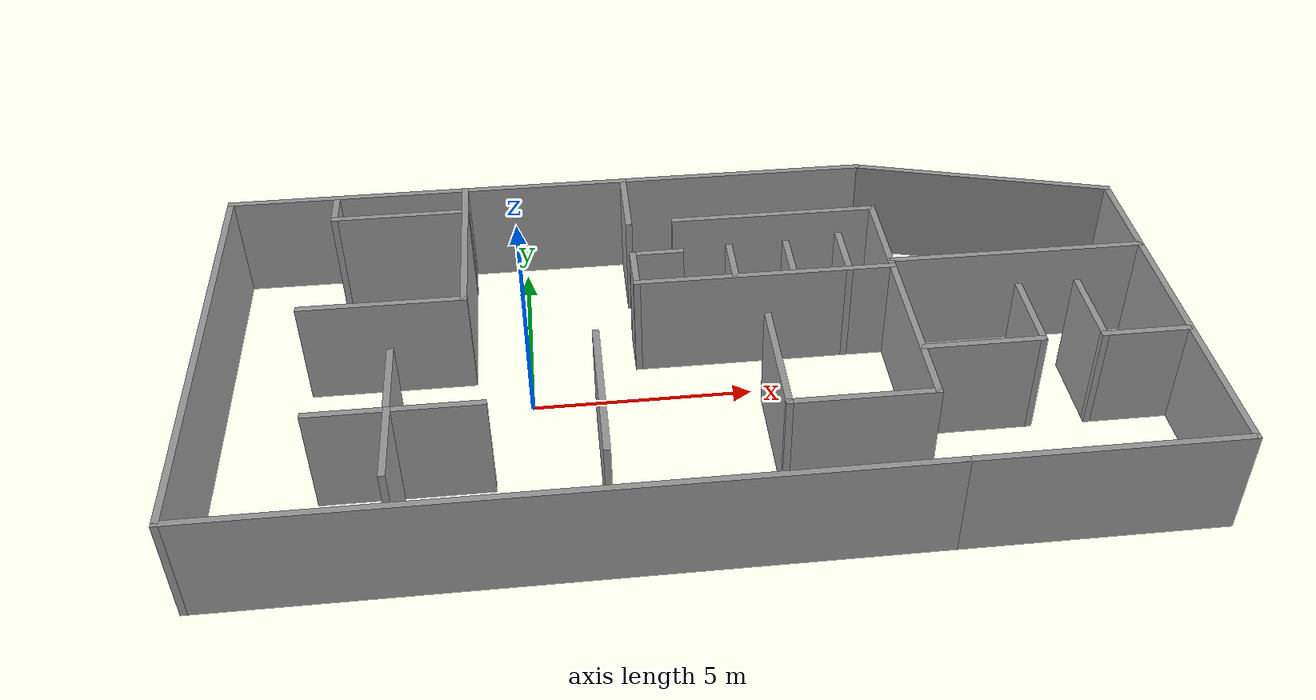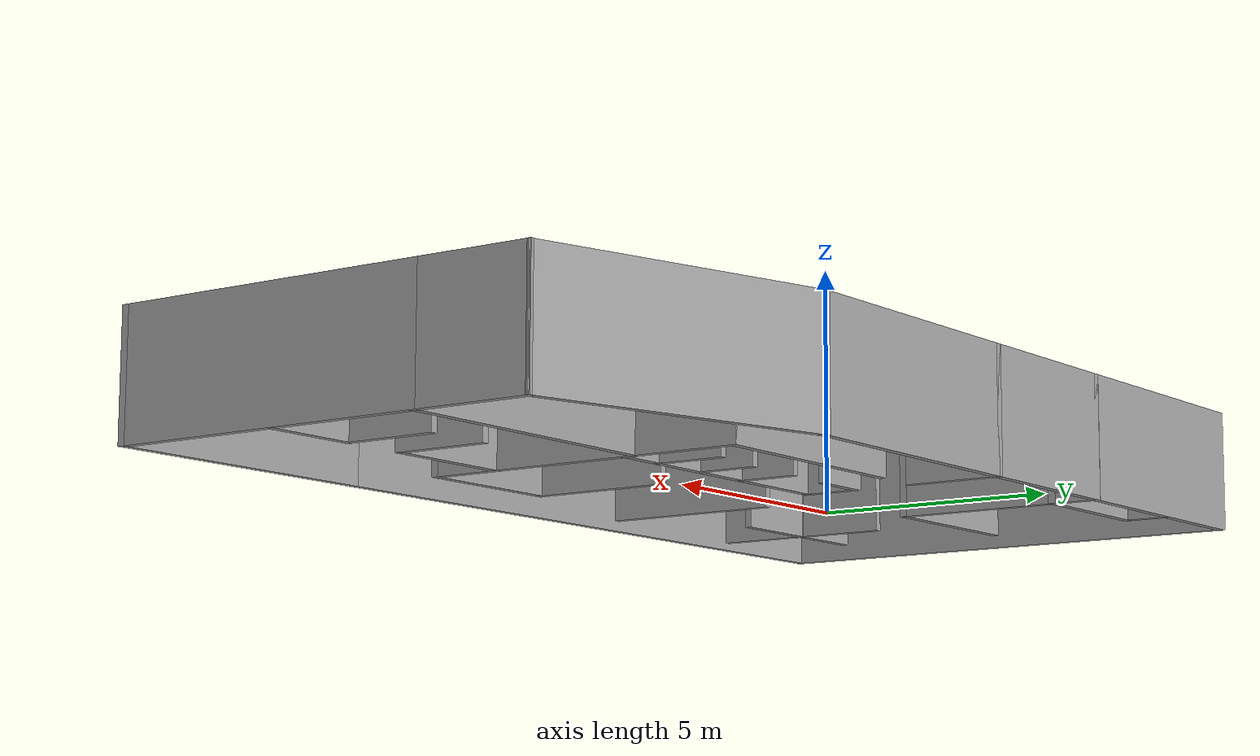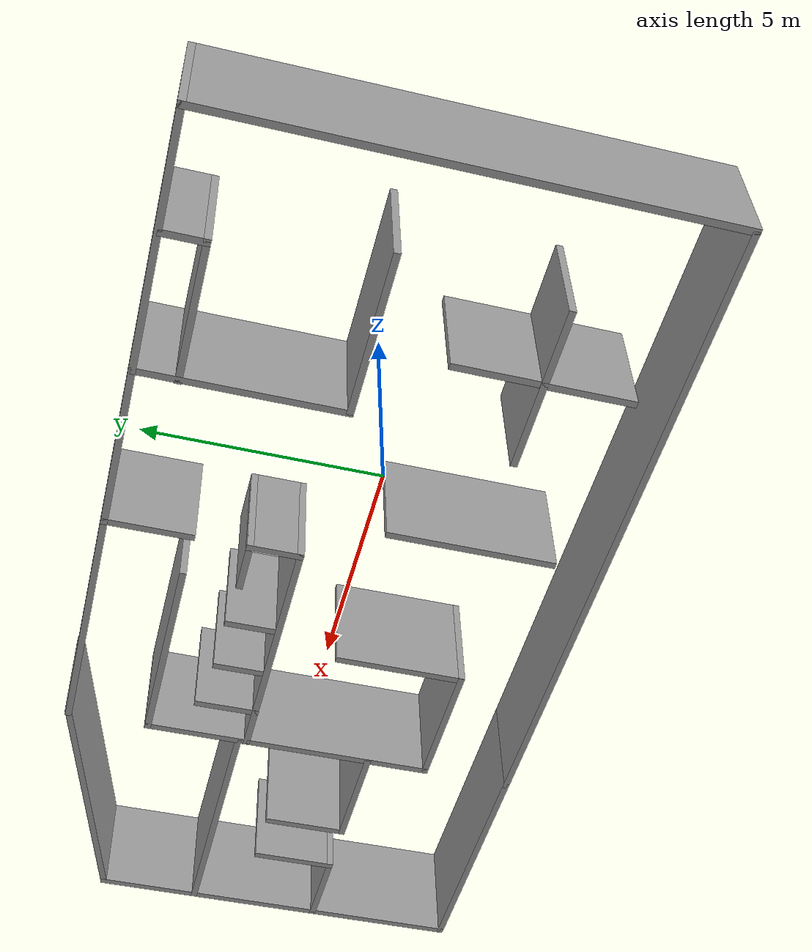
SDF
<?xml version='1.0'?>
<sdf version='1.6'>
  <model name='Building3'>
    <pose frame=''>3.66566 0.078593 0 0 -0 0</pose>
    <link name='Wall_153'>
      <collision name='Wall_153_Collision'>
        <geometry>
          <box>
            <size>4 0.15 2.5</size>
          </box>
        </geometry>
        <pose frame=''>0 0 1.25 0 -0 0</pose>
      </collision>
      <visual name='Wall_153_Visual'>
        <pose frame=''>0 0 1.25 0 -0 0</pose>
        <geometry>
          <box>
            <size>4 0.15 2.5</size>
          </box>
        </geometry>
        <material>
          <script>
            <uri>file://media/materials/scripts/gazebo.material</uri>
            <name>Gazebo/Grey</name>
          </script>
          <ambient>1 1 1 1</ambient>
        </material>
      </visual>
      <pose frame=''>-3.08371 5.29129 0 0 -0 0</pose>
    </link>
    <link name='Wall_154'>
      <collision name='Wall_154_Collision'>
        <geometry>
          <box>
            <size>2 0.15 2.5</size>
          </box>
        </geometry>
        <pose frame=''>0 0 1.25 0 -0 0</pose>
      </collision>
      <visual name='Wall_154_Visual'>
        <pose frame=''>0 0 1.25 0 -0 0</pose>
        <geometry>
          <box>
            <size>2 0.15 2.5</size>
          </box>
        </geometry>
        <material>
          <script>
            <uri>file://media/materials/scripts/gazebo.material</uri>
            <name>Gazebo/Grey</name>
          </script>
          <ambient>1 1 1 1</ambient>
        </material>
      </visual>
      <pose frame=''>-1.15871 4.36629 0 0 0 -1.5708</pose>
    </link>
    <link name='Wall_156'>
      <collision name='Wall_156_Collision'>
        <geometry>
          <box>
            <size>6 0.15 2.5</size>
          </box>
        </geometry>
        <pose frame=''>0 0 1.25 0 -0 0</pose>
      </collision>
      <visual name='Wall_156_Visual'>
        <pose frame=''>0 0 1.25 0 -0 0</pose>
        <geometry>
          <box>
            <size>6 0.15 2.5</size>
          </box>
        </geometry>
        <material>
          <script>
            <uri>file://media/materials/scripts/gazebo.material</uri>
            <name>Gazebo/Grey</name>
          </script>
          <ambient>1 1 1 1</ambient>
        </material>
      </visual>
      <pose frame=''>1.76629 5.29129 0 0 -0 0</pose>
    </link>
    <link name='Wall_161'>
      <collision name='Wall_161_Collision'>
        <geometry>
          <box>
            <size>4.9 0.15 2.5</size>
          </box>
        </geometry>
        <pose frame=''>0 0 1.25 0 -0 0</pose>
      </collision>
      <visual name='Wall_161_Visual'>
        <pose frame=''>0 0 1.25 0 -0 0</pose>
        <geometry>
          <box>
            <size>4.9 0.15 2.5</size>
          </box>
        </geometry>
        <material>
          <script>
            <uri>file://media/materials/scripts/gazebo.material</uri>
            <name>Gazebo/Grey</name>
          </script>
          <ambient>1 1 1 1</ambient>
        </material>
      </visual>
      <pose frame=''>2.31629 3.44129 0 0 -0 0</pose>
    </link>
    <link name='Wall_165'>
      <collision name='Wall_165_Collision'>
        <geometry>
          <box>
            <size>2.5 0.15 2.5</size>
          </box>
        </geometry>
        <pose frame=''>0 0 1.25 0 -0 0</pose>
      </collision>
      <visual name='Wall_165_Visual'>
        <pose frame=''>0 0 1.25 0 -0 0</pose>
        <geometry>
          <box>
            <size>2.5 0.15 2.5</size>
          </box>
        </geometry>
        <material>
          <script>
            <uri>file://media/materials/scripts/gazebo.material</uri>
            <name>Gazebo/Grey</name>
          </script>
          <ambient>1 1 1 1</ambient>
        </material>
      </visual>
      <pose frame=''>4.69129 2.26629 0 0 0 -1.5708</pose>
    </link>
    <link name='Wall_167'>
      <collision name='Wall_167_Collision'>
        <geometry>
          <box>
            <size>6 0.15 2.5</size>
          </box>
        </geometry>
        <pose frame=''>0 0 1.25 0 -0 0</pose>
      </collision>
      <visual name='Wall_167_Visual'>
        <pose frame=''>0 0 1.25 0 -0 0</pose>
        <geometry>
          <box>
            <size>6 0.15 2.5</size>
          </box>
        </geometry>
        <material>
          <script>
            <uri>file://media/materials/scripts/gazebo.material</uri>
            <name>Gazebo/Grey</name>
          </script>
          <ambient>1 1 1 1</ambient>
        </material>
      </visual>
      <pose frame=''>1.76629 1.09129 0 0 -0 3.14159</pose>
    </link>
    <link name='Wall_168'>
      <collision name='Wall_168_Collision'>
        <geometry>
          <box>
            <size>1.25 0.15 2.5</size>
          </box>
        </geometry>
        <pose frame=''>0 0 1.25 0 -0 0</pose>
      </collision>
      <visual name='Wall_168_Visual'>
        <pose frame=''>0 0 1.25 0 -0 0</pose>
        <geometry>
          <box>
            <size>1.25 0.15 2.5</size>
          </box>
        </geometry>
        <material>
          <script>
            <uri>file://media/materials/scripts/gazebo.material</uri>
            <name>Gazebo/Grey</name>
          </script>
          <ambient>1 1 1 1</ambient>
        </material>
      </visual>
      <pose frame=''>-1.15871 1.64129 0 0 -0 1.5708</pose>
    </link>
    <link name='Wall_170'>
      <collision name='Wall_170_Collision'>
        <geometry>
          <box>
            <size>1.25 0.15 2.5</size>
          </box>
        </geometry>
        <pose frame=''>0 0 1.25 0 -0 0</pose>
      </collision>
      <visual name='Wall_170_Visual'>
        <pose frame=''>0 0 1.25 0 -0 0</pose>
        <geometry>
          <box>
            <size>1.25 0.15 2.5</size>
          </box>
        </geometry>
        <material>
          <script>
            <uri>file://media/materials/scripts/gazebo.material</uri>
            <name>Gazebo/Grey</name>
          </script>
          <ambient>1 1 1 1</ambient>
        </material>
      </visual>
      <pose frame=''>-0.608713 2.19129 0 0 -0 0</pose>
    </link>
    <link name='Wall_172'>
      <collision name='Wall_172_Collision'>
        <geometry>
          <box>
            <size>1.25 0.15 2.5</size>
          </box>
        </geometry>
        <pose frame=''>0 0 1.25 0 -0 0</pose>
      </collision>
      <visual name='Wall_172_Visual'>
        <pose frame=''>0 0 1.25 0 -0 0</pose>
        <geometry>
          <box>
            <size>1.25 0.15 2.5</size>
          </box>
        </geometry>
        <material>
          <script>
            <uri>file://media/materials/scripts/gazebo.material</uri>
            <name>Gazebo/Grey</name>
          </script>
          <ambient>1 1 1 1</ambient>
        </material>
      </visual>
      <pose frame=''>1.0841 1.68212 0 0 -0 1.5708</pose>
    </link>
    <link name='Wall_174'>
      <collision name='Wall_174_Collision'>
        <geometry>
          <box>
            <size>1.25 0.15 2.5</size>
          </box>
        </geometry>
        <pose frame=''>0 0 1.25 0 -0 0</pose>
      </collision>
      <visual name='Wall_174_Visual'>
        <pose frame=''>0 0 1.25 0 -0 0</pose>
        <geometry>
          <box>
            <size>1.25 0.15 2.5</size>
          </box>
        </geometry>
        <material>
          <script>
            <uri>file://media/materials/scripts/gazebo.material</uri>
            <name>Gazebo/Grey</name>
          </script>
          <ambient>1 1 1 1</ambient>
        </material>
      </visual>
      <pose frame=''>2.41445 1.69349 0 0 -0 1.5708</pose>
    </link>
    <link name='Wall_177'>
      <collision name='Wall_177_Collision'>
        <geometry>
          <box>
            <size>1.5 0.15 2.5</size>
          </box>
        </geometry>
        <pose frame=''>0 0 1.25 0 -0 0</pose>
      </collision>
      <visual name='Wall_177_Visual'>
        <pose frame=''>0 0 1.25 0 -0 0</pose>
        <geometry>
          <box>
            <size>1.5 0.15 2.5</size>
          </box>
        </geometry>
        <material>
          <script>
            <uri>file://media/materials/scripts/gazebo.material</uri>
            <name>Gazebo/Grey</name>
          </script>
          <ambient>1 1 1 1</ambient>
        </material>
      </visual>
      <pose frame=''>3.68795 1.76164 0 0 -0 1.5708</pose>
    </link>
    <link name='Wall_179'>
      <collision name='Wall_179_Collision'>
        <geometry>
          <box>
            <size>4.5 0.15 2.5</size>
          </box>
        </geometry>
        <pose frame=''>0 0 1.25 0 -0 0</pose>
      </collision>
      <visual name='Wall_179_Visual'>
        <pose frame=''>0 0 1.25 0 -0 0</pose>
        <geometry>
          <box>
            <size>4.5 0.15 2.5</size>
          </box>
        </geometry>
        <material>
          <script>
            <uri>file://media/materials/scripts/gazebo.material</uri>
            <name>Gazebo/Grey</name>
          </script>
          <ambient>1 1 1 1</ambient>
        </material>
      </visual>
      <pose frame=''>-5.00871 3.11629 0 0 0 -1.5708</pose>
    </link>
    <link name='Wall_181'>
      <collision name='Wall_181_Collision'>
        <geometry>
          <box>
            <size>4.5 0.15 2.5</size>
          </box>
        </geometry>
        <pose frame=''>0 0 1.25 0 -0 0</pose>
      </collision>
      <visual name='Wall_181_Visual'>
        <pose frame=''>0 0 1.25 0 -0 0</pose>
        <geometry>
          <box>
            <size>4.5 0.15 2.5</size>
          </box>
        </geometry>
        <material>
          <script>
            <uri>file://media/materials/scripts/gazebo.material</uri>
            <name>Gazebo/Grey</name>
          </script>
          <ambient>1 1 1 1</ambient>
        </material>
      </visual>
      <pose frame=''>4.69129 -1.08371 0 0 0 -1.5708</pose>
    </link>
    <link name='Wall_187'>
      <collision name='Wall_187_Collision'>
        <geometry>
          <box>
            <size>3 0.15 2.5</size>
          </box>
        </geometry>
        <pose frame=''>0 0 1.25 0 -0 0</pose>
      </collision>
      <visual name='Wall_187_Visual'>
        <pose frame=''>0 0 1.25 0 -0 0</pose>
        <geometry>
          <box>
            <size>3 0.15 2.5</size>
          </box>
        </geometry>
        <material>
          <script>
            <uri>file://media/materials/scripts/gazebo.material</uri>
            <name>Gazebo/Grey</name>
          </script>
          <ambient>1 1 1 1</ambient>
        </material>
      </visual>
      <pose frame=''>1.59129 -1.83371 0 0 -0 1.5708</pose>
    </link>
    <link name='Wall_190'>
      <collision name='Wall_190_Collision'>
        <geometry>
          <box>
            <size>5.75 0.15 2.5</size>
          </box>
        </geometry>
        <pose frame=''>0 0 1.25 0 -0 0</pose>
      </collision>
      <visual name='Wall_190_Visual'>
        <pose frame=''>0 0 1.25 0 -0 0</pose>
        <geometry>
          <box>
            <size>5.75 0.15 2.5</size>
          </box>
        </geometry>
        <material>
          <script>
            <uri>file://media/materials/scripts/gazebo.material</uri>
            <name>Gazebo/Grey</name>
          </script>
          <ambient>1 1 1 1</ambient>
        </material>
      </visual>
      <pose frame=''>-7.80871 5.29129 0 0 -0 3.14159</pose>
    </link>
    <link name='Wall_194'>
      <collision name='Wall_194_Collision'>
        <geometry>
          <box>
            <size>10.75 0.15 2.5</size>
          </box>
        </geometry>
        <pose frame=''>0 0 1.25 0 -0 0</pose>
      </collision>
      <visual name='Wall_194_Visual'>
        <pose frame=''>0 0 1.25 0 -0 0</pose>
        <geometry>
          <box>
            <size>10.75 0.15 2.5</size>
          </box>
        </geometry>
        <material>
          <script>
            <uri>file://media/materials/scripts/gazebo.material</uri>
            <name>Gazebo/Grey</name>
          </script>
          <ambient>1 1 1 1</ambient>
        </material>
      </visual>
      <pose frame=''>-10.6087 -0.008714 0 0 0 -1.5708</pose>
    </link>
    <link name='Wall_197'>
      <collision name='Wall_197_Collision'>
        <geometry>
          <box>
            <size>15.5 0.15 2.5</size>
          </box>
        </geometry>
        <pose frame=''>0 0 1.25 0 -0 0</pose>
      </collision>
      <visual name='Wall_197_Visual'>
        <pose frame=''>0 0 1.25 0 -0 0</pose>
        <geometry>
          <box>
            <size>15.5 0.15 2.5</size>
          </box>
        </geometry>
        <material>
          <script>
            <uri>file://media/materials/scripts/gazebo.material</uri>
            <name>Gazebo/Grey</name>
          </script>
          <ambient>1 1 1 1</ambient>
        </material>
      </visual>
      <pose frame=''>-2.93371 -5.30871 0 0 -0 0</pose>
    </link>
    <link name='Wall_199'>
      <collision name='Wall_199_Collision'>
        <geometry>
          <box>
            <size>6 0.15 2.5</size>
          </box>
        </geometry>
        <pose frame=''>0 0 1.25 0 -0 0</pose>
      </collision>
      <visual name='Wall_199_Visual'>
        <pose frame=''>0 0 1.25 0 -0 0</pose>
        <geometry>
          <box>
            <size>6 0.15 2.5</size>
          </box>
        </geometry>
        <material>
          <script>
            <uri>file://media/materials/scripts/gazebo.material</uri>
            <name>Gazebo/Grey</name>
          </script>
          <ambient>1 1 1 1</ambient>
        </material>
      </visual>
      <pose frame=''>7.66629 1.29129 0 0 -0 0</pose>
    </link>
    <link name='Wall_200'>
      <collision name='Wall_200_Collision'>
        <geometry>
          <box>
            <size>6.75 0.15 2.5</size>
          </box>
        </geometry>
        <pose frame=''>0 0 1.25 0 -0 0</pose>
      </collision>
      <visual name='Wall_200_Visual'>
        <pose frame=''>0 0 1.25 0 -0 0</pose>
        <geometry>
          <box>
            <size>6.75 0.15 2.5</size>
          </box>
        </geometry>
        <material>
          <script>
            <uri>file://media/materials/scripts/gazebo.material</uri>
            <name>Gazebo/Grey</name>
          </script>
          <ambient>1 1 1 1</ambient>
        </material>
      </visual>
      <pose frame=''>10.5913 -2.00871 0 0 0 -1.5708</pose>
    </link>
    <link name='Wall_201'>
      <collision name='Wall_201_Collision'>
        <geometry>
          <box>
            <size>6 0.15 2.5</size>
          </box>
        </geometry>
        <pose frame=''>0 0 1.25 0 -0 0</pose>
      </collision>
      <visual name='Wall_201_Visual'>
        <pose frame=''>0 0 1.25 0 -0 0</pose>
        <geometry>
          <box>
            <size>6 0.15 2.5</size>
          </box>
        </geometry>
        <material>
          <script>
            <uri>file://media/materials/scripts/gazebo.material</uri>
            <name>Gazebo/Grey</name>
          </script>
          <ambient>1 1 1 1</ambient>
        </material>
      </visual>
      <pose frame=''>7.66629 -5.30871 0 0 -0 3.14159</pose>
    </link>
    <link name='Wall_203'>
      <collision name='Wall_203_Collision'>
        <geometry>
          <box>
            <size>3.75 0.15 2.5</size>
          </box>
        </geometry>
        <pose frame=''>0 0 1.25 0 -0 0</pose>
      </collision>
      <visual name='Wall_203_Visual'>
        <pose frame=''>0 0 1.25 0 -0 0</pose>
        <geometry>
          <box>
            <size>3.75 0.15 2.5</size>
          </box>
        </geometry>
        <material>
          <script>
            <uri>file://media/materials/scripts/gazebo.material</uri>
            <name>Gazebo/Grey</name>
          </script>
          <ambient>1 1 1 1</ambient>
        </material>
      </visual>
      <pose frame=''>-6.80871 0.941286 0 0 -0 3.14159</pose>
    </link>
    <link name='Wall_205'>
      <collision name='Wall_205_Collision'>
        <geometry>
          <box>
            <size>3.25 0.15 2.5</size>
          </box>
        </geometry>
        <pose frame=''>0 0 1.25 0 -0 0</pose>
      </collision>
      <visual name='Wall_205_Visual'>
        <pose frame=''>0 0 1.25 0 -0 0</pose>
        <geometry>
          <box>
            <size>3.25 0.15 2.5</size>
          </box>
        </geometry>
        <material>
          <script>
            <uri>file://media/materials/scripts/gazebo.material</uri>
            <name>Gazebo/Grey</name>
          </script>
          <ambient>1 1 1 1</ambient>
        </material>
      </visual>
      <pose frame=''>-6.53994 4.37764 0 0 -0 3.14159</pose>
    </link>
    <link name='Wall_206'>
      <collision name='Wall_206_Collision'>
        <geometry>
          <box>
            <size>1 0.15 2.5</size>
          </box>
        </geometry>
        <pose frame=''>0 0 1.25 0 -0 0</pose>
      </collision>
      <visual name='Wall_206_Visual'>
        <pose frame=''>0 0 1.25 0 -0 0</pose>
        <geometry>
          <box>
            <size>1 0.15 2.5</size>
          </box>
        </geometry>
        <material>
          <script>
            <uri>file://media/materials/scripts/gazebo.material</uri>
            <name>Gazebo/Grey</name>
          </script>
          <ambient>1 1 1 1</ambient>
        </material>
      </visual>
      <pose frame=''>-8.08994 4.80264 0 0 -0 1.5708</pose>
    </link>
    <link name='Wall_208'>
      <collision name='Wall_208_Collision'>
        <geometry>
          <box>
            <size>2.75 0.15 2.5</size>
          </box>
        </geometry>
        <pose frame=''>0 0 1.25 0 -0 0</pose>
      </collision>
      <visual name='Wall_208_Visual'>
        <pose frame=''>0 0 1.25 0 -0 0</pose>
        <geometry>
          <box>
            <size>2.75 0.15 2.5</size>
          </box>
        </geometry>
        <material>
          <script>
            <uri>file://media/materials/scripts/gazebo.material</uri>
            <name>Gazebo/Grey</name>
          </script>
          <ambient>1 1 1 1</ambient>
        </material>
      </visual>
      <pose frame=''>6.02612 -1.84909 0 0 -0 0</pose>
    </link>
    <link name='Wall_209'>
      <collision name='Wall_209_Collision'>
        <geometry>
          <box>
            <size>2 0.15 2.5</size>
          </box>
        </geometry>
        <pose frame=''>0 0 1.25 0 -0 0</pose>
      </collision>
      <visual name='Wall_209_Visual'>
        <pose frame=''>0 0 1.25 0 -0 0</pose>
        <geometry>
          <box>
            <size>2 0.15 2.5</size>
          </box>
        </geometry>
        <material>
          <script>
            <uri>file://media/materials/scripts/gazebo.material</uri>
            <name>Gazebo/Grey</name>
          </script>
          <ambient>1 1 1 1</ambient>
        </material>
      </visual>
      <pose frame=''>7.32612 -0.924095 0 0 -0 1.5708</pose>
    </link>
    <link name='Wall_211'>
      <collision name='Wall_211_Collision'>
        <geometry>
          <box>
            <size>3.25 0.15 2.5</size>
          </box>
        </geometry>
        <pose frame=''>0 0 1.25 0 -0 0</pose>
      </collision>
      <visual name='Wall_211_Visual'>
        <pose frame=''>0 0 1.25 0 -0 0</pose>
        <geometry>
          <box>
            <size>3.25 0.15 2.5</size>
          </box>
        </geometry>
        <material>
          <script>
            <uri>file://media/materials/scripts/gazebo.material</uri>
            <name>Gazebo/Grey</name>
          </script>
          <ambient>1 1 1 1</ambient>
        </material>
      </visual>
      <pose frame=''>3.14129 -3.25871 0 0 -0 3.14159</pose>
    </link>
    <link name='Wall_214'>
      <collision name='Wall_214_Collision'>
        <geometry>
          <box>
            <size>2 0.15 2.5</size>
          </box>
        </geometry>
        <pose frame=''>0 0 1.25 0 -0 0</pose>
      </collision>
      <visual name='Wall_214_Visual'>
        <pose frame=''>0 0 1.25 0 -0 0</pose>
        <geometry>
          <box>
            <size>2 0.15 2.5</size>
          </box>
        </geometry>
        <material>
          <script>
            <uri>file://media/materials/scripts/gazebo.material</uri>
            <name>Gazebo/Grey</name>
          </script>
          <ambient>1 1 1 1</ambient>
        </material>
      </visual>
      <pose frame=''>8.67612 -0.924095 0 0 -0 1.5708</pose>
    </link>
    <link name='Wall_216'>
      <collision name='Wall_216_Collision'>
        <geometry>
          <box>
            <size>2 0.15 2.5</size>
          </box>
        </geometry>
        <pose frame=''>0 0 1.25 0 -0 0</pose>
      </collision>
      <visual name='Wall_216_Visual'>
        <pose frame=''>0 0 1.25 0 -0 0</pose>
        <geometry>
          <box>
            <size>2 0.15 2.5</size>
          </box>
        </geometry>
        <material>
          <script>
            <uri>file://media/materials/scripts/gazebo.material</uri>
            <name>Gazebo/Grey</name>
          </script>
          <ambient>1 1 1 1</ambient>
        </material>
      </visual>
      <pose frame=''>9.60112 -1.84909 0 0 -0 0</pose>
    </link>
    <link name='Wall_219'>
      <collision name='Wall_219_Collision'>
        <geometry>
          <box>
            <size>2.5 0.15 2.5</size>
          </box>
        </geometry>
        <pose frame=''>0 0 1.25 0 -0 0</pose>
      </collision>
      <visual name='Wall_219_Visual'>
        <pose frame=''>0 0 1.25 0 -0 0</pose>
        <geometry>
          <box>
            <size>2.5 0.15 2.5</size>
          </box>
        </geometry>
        <material>
          <script>
            <uri>file://media/materials/scripts/gazebo.material</uri>
            <name>Gazebo/Grey</name>
          </script>
          <ambient>1 1 1 1</ambient>
        </material>
      </visual>
      <pose frame=''>10.5913 2.46629 0 0 0 -1.5708</pose>
    </link>
    <link name='Wall_223'>
      <collision name='Wall_223_Collision'>
        <geometry>
          <box>
            <size>6.27638 0.15 2.5</size>
          </box>
        </geometry>
        <pose frame=''>0 0 1.25 0 -0 0</pose>
      </collision>
      <visual name='Wall_223_Visual'>
        <pose frame=''>0 0 1.25 0 -0 0</pose>
        <geometry>
          <box>
            <size>6.27638 0.15 2.5</size>
          </box>
        </geometry>
        <material>
          <script>
            <uri>file://media/materials/scripts/gazebo.material</uri>
            <name>Gazebo/Grey</name>
          </script>
          <ambient>1 1 1 1</ambient>
        </material>
      </visual>
      <pose frame=''>7.64129 4.46629 0 0 -0 2.8689</pose>
    </link>
    <link name='Wall_225'>
      <collision name='Wall_225_Collision'>
        <geometry>
          <box>
            <size>3.75 0.15 2.5</size>
          </box>
        </geometry>
        <pose frame=''>0 0 1.25 0 -0 0</pose>
      </collision>
      <visual name='Wall_225_Visual'>
        <pose frame=''>0 0 1.25 0 -0 0</pose>
        <geometry>
          <box>
            <size>3.75 0.15 2.5</size>
          </box>
        </geometry>
        <material>
          <script>
            <uri>file://media/materials/scripts/gazebo.material</uri>
            <name>Gazebo/Grey</name>
          </script>
          <ambient>1 1 1 1</ambient>
        </material>
      </visual>
      <pose frame=''>-6.38175 -2.59169 0 0 -0 0</pose>
    </link>
    <link name='Wall_227'>
      <collision name='Wall_227_Collision'>
        <geometry>
          <box>
            <size>2 0.15 2.5</size>
          </box>
        </geometry>
        <pose frame=''>0 0 1.25 0 -0 0</pose>
      </collision>
      <visual name='Wall_227_Visual'>
        <pose frame=''>0 0 1.25 0 -0 0</pose>
        <geometry>
          <box>
            <size>2 0.15 2.5</size>
          </box>
        </geometry>
        <material>
          <script>
            <uri>file://media/materials/scripts/gazebo.material</uri>
            <name>Gazebo/Grey</name>
          </script>
          <ambient>1 1 1 1</ambient>
        </material>
      </visual>
      <pose frame=''>-6.53438 -1.6594 0 0 -0 1.5708</pose>
    </link>
    <link name='Wall_229'>
      <collision name='Wall_229_Collision'>
        <geometry>
          <box>
            <size>2 0.15 2.5</size>
          </box>
        </geometry>
        <pose frame=''>0 0 1.25 0 -0 0</pose>
      </collision>
      <visual name='Wall_229_Visual'>
        <pose frame=''>0 0 1.25 0 -0 0</pose>
        <geometry>
          <box>
            <size>2 0.15 2.5</size>
          </box>
        </geometry>
        <material>
          <script>
            <uri>file://media/materials/scripts/gazebo.material</uri>
            <name>Gazebo/Grey</name>
          </script>
          <ambient>1 1 1 1</ambient>
        </material>
      </visual>
      <pose frame=''>-6.51709 -3.5094 0 0 0 -1.5708</pose>
    </link>
    <link name='Wall_231'>
      <collision name='Wall_231_Collision'>
        <geometry>
          <box>
            <size>3.75 0.15 2.5</size>
          </box>
        </geometry>
        <pose frame=''>0 0 1.25 0 -0 0</pose>
      </collision>
      <visual name='Wall_231_Visual'>
        <pose frame=''>0 0 1.25 0 -0 0</pose>
        <geometry>
          <box>
            <size>3.75 0.15 2.5</size>
          </box>
        </geometry>
        <material>
          <script>
            <uri>file://media/materials/scripts/gazebo.material</uri>
            <name>Gazebo/Grey</name>
          </script>
          <ambient>1 1 1 1</ambient>
        </material>
      </visual>
      <pose frame=''>-2.17819 -2.39196 0 0 0 -1.5708</pose>
    </link>
    <static>1</static>
  </model>
</sdf>
